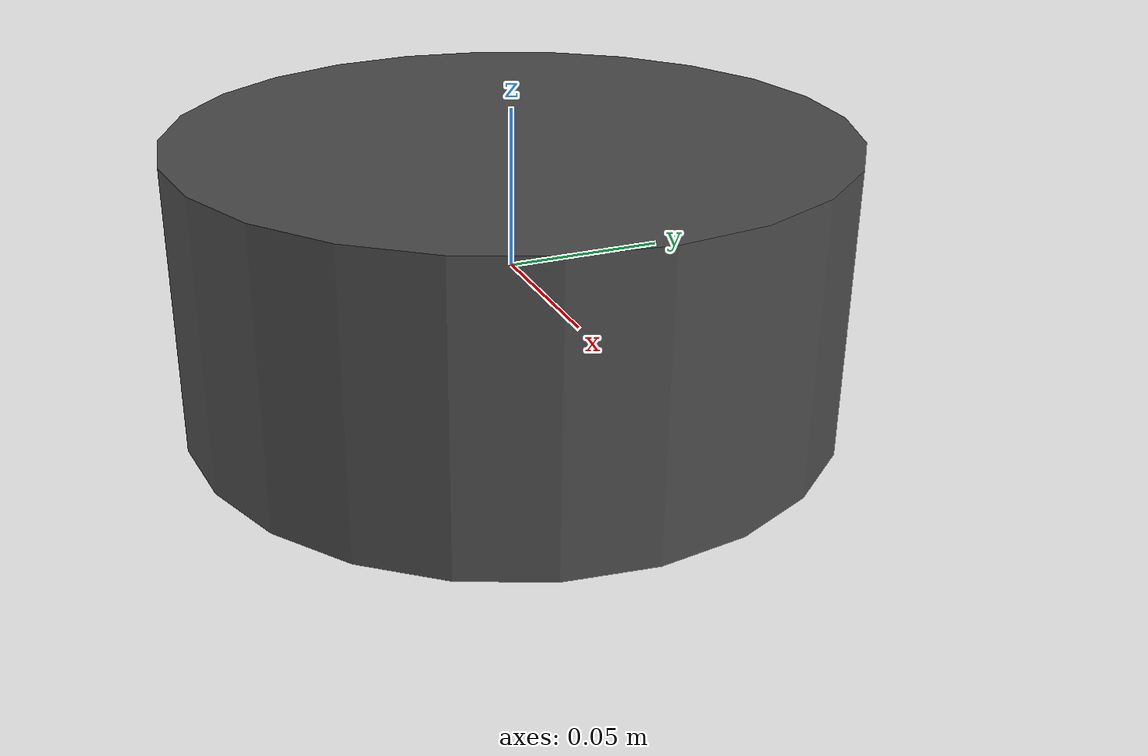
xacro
<?xml version="3.0"?>
<robot name="sensor_m8" xmlns:xacro="http://ros.org/wiki/xacro">
  <xacro:macro name="sensor_m8">
    <link name="base_link"/>
    <joint name="m8_joint" type="fixed">
      <origin xyz="0 0 0" rpy="0 0 0"/>
      <parent link="base_link"/>
      <child link="QP308"/>
    </joint>
    <link name="QP308">
      <visual>
        <origin xyz="0 0 0" rpy="0 0 0"/>
        <geometry>
          <cylinder length="0.0876" radius="0.10315"/>
        </geometry>
        <material name="dark_grey">
          <color rgba="0.3 0.3 0.3 1"/>
        </material>
      </visual>
    </link>
  </xacro:macro>
  <sensor_m8/>
</robot>
